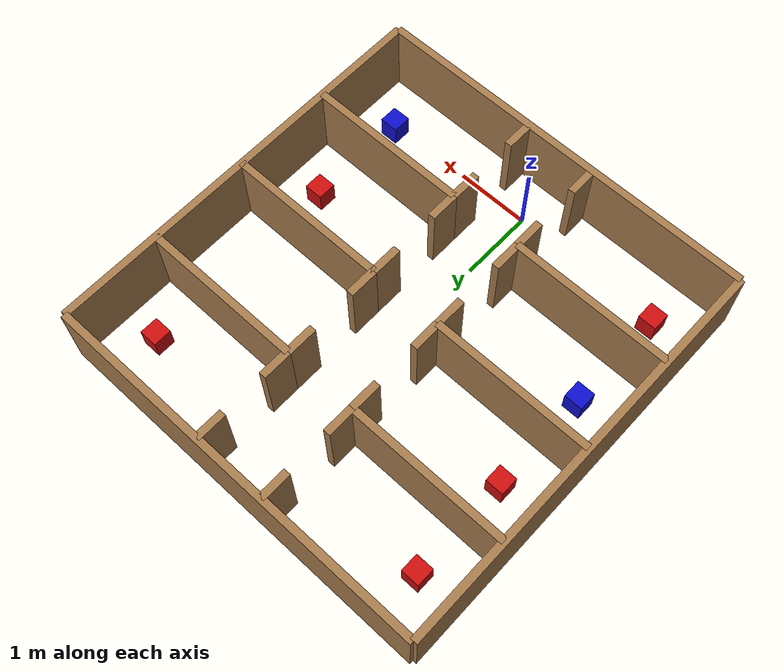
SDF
<sdf version="1.5">
 <world name="tars_borde_simetria">
  <physics type="ode">
   <max_step_size>0.001</max_step_size>
   <real_time_factor>1</real_time_factor>
   <real_time_update_rate>1000</real_time_update_rate>
   <gravity>0 0 -9.8</gravity>
  </physics>
  <plugin filename="gz-sim-physics-system" name="gz::sim::systems::Physics"/>
  <plugin filename="gz-sim-user-commands-system" name="gz::sim::systems::UserCommands"/>
  <plugin filename="gz-sim-scene-broadcaster-system" name="gz::sim::systems::SceneBroadcaster"/>
  <plugin filename="gz-sim-contact-system" name="gz::sim::systems::Contact"/>
  <plugin filename="gz-sim-sensors-system" name="gz::sim::systems::Sensors">
   <render_engine>ogre2</render_engine>
  </plugin>
  <plugin filename="gz-sim-imu-system" name="gz::sim::systems::Imu"/>
  <scene>
   <shadows>false</shadows>
   <ambient>0.2 0.2 0.2 1</ambient>
   <background>1 1 1 1</background>
   <grid>false</grid>
   <origin_visual>false</origin_visual>
  </scene>
  <include><uri>model://sun</uri></include>
  <light name="camera_spot_1_light" type="spot">
   <pose>-6 4 4 0 -1 -0.8</pose>
   <diffuse>0.5 0.5 0.5 1</diffuse>
   <specular>0.1 0.1 0.1 1</specular>
   <direction>0 0 -1</direction>
   <attenuation>
    <range>20</range>
    <constant>0.2</constant>
    <linear>0.01</linear>
    <quadratic>0.001</quadratic>
   </attenuation>
   <cast_shadows>0</cast_shadows>
   <spot><inner_angle>0.6</inner_angle><outer_angle>1</outer_angle><falloff>1</falloff></spot>
  </light>
  <light name="camera_spot_2_light" type="spot">
   <pose>5 -3 4 0 0.8 -0.6</pose>
   <diffuse>0.5 0.5 0.5 1</diffuse>
   <specular>0.1 0.1 0.1 1</specular>
   <direction>0 0 -1</direction>
   <attenuation>
    <range>20</range>
    <constant>0.3</constant>
    <linear>0.01</linear>
    <quadratic>0.001</quadratic>
   </attenuation>
   <cast_shadows>0</cast_shadows>
   <spot><inner_angle>0.6</inner_angle><outer_angle>1</outer_angle><falloff>1</falloff></spot>
  </light>
  <model name="paredes_borde">
   <static>true</static>
   <link name="pared_1">
    <pose>0.0 -0.6 0.5 0 0 0</pose>
    <collision name="collision"><geometry><box><size>5.4 0.1 1.0</size></box></geometry></collision>
    <visual name="visual">
     <geometry><box><size>5.4 0.1 1.0</size></box></geometry>
     <material><ambient>0.65 0.48 0.30 1</ambient><diffuse>0.65 0.48 0.30 1</diffuse></material>
    </visual>
   </link>
   <link name="pared_2">
    <pose>2.7 2.2 0.5 0 0 0</pose>
    <collision name="collision"><geometry><box><size>0.1 5.6 1.0</size></box></geometry></collision>
    <visual name="visual">
     <geometry><box><size>0.1 5.6 1.0</size></box></geometry>
     <material><ambient>0.65 0.48 0.30 1</ambient><diffuse>0.65 0.48 0.30 1</diffuse></material>
    </visual>
   </link>
   <link name="pared_3">
    <pose>0.0 5.0 0.5 0 0 0</pose>
    <collision name="collision"><geometry><box><size>5.4 0.1 1.0</size></box></geometry></collision>
    <visual name="visual">
     <geometry><box><size>5.4 0.1 1.0</size></box></geometry>
     <material><ambient>0.65 0.48 0.30 1</ambient><diffuse>0.65 0.48 0.30 1</diffuse></material>
    </visual>
   </link>
   <link name="pared_4">
    <pose>-2.7 2.2 0.5 0 0 0</pose>
    <collision name="collision"><geometry><box><size>0.1 5.6 1.0</size></box></geometry></collision>
    <visual name="visual">
     <geometry><box><size>0.1 5.6 1.0</size></box></geometry>
     <material><ambient>0.65 0.48 0.30 1</ambient><diffuse>0.65 0.48 0.30 1</diffuse></material>
    </visual>
   </link>
   <link name="pared_5">
    <pose>-0.5 -0.4 0.5 0 0 0</pose>
    <collision name="collision">
     <geometry><box><size>0.1 0.39999999999999997 1.0</size></box></geometry>
    </collision>
    <visual name="visual">
     <geometry><box><size>0.1 0.39999999999999997 1.0</size></box></geometry>
     <material><ambient>0.65 0.48 0.30 1</ambient><diffuse>0.65 0.48 0.30 1</diffuse></material>
    </visual>
   </link>
   <link name="pared_6">
    <pose>-0.5 0.6 0.5 0 0 0</pose>
    <collision name="collision">
     <geometry><box><size>0.1 0.39999999999999997 1.0</size></box></geometry>
    </collision>
    <visual name="visual">
     <geometry><box><size>0.1 0.39999999999999997 1.0</size></box></geometry>
     <material><ambient>0.65 0.48 0.30 1</ambient><diffuse>0.65 0.48 0.30 1</diffuse></material>
    </visual>
   </link>
   <link name="pared_7">
    <pose>-1.6 0.7999999999999999 0.5 0 0 0</pose>
    <collision name="collision"><geometry><box><size>2.2 0.1 1.0</size></box></geometry></collision>
    <visual name="visual">
     <geometry><box><size>2.2 0.1 1.0</size></box></geometry>
     <material><ambient>0.65 0.48 0.30 1</ambient><diffuse>0.65 0.48 0.30 1</diffuse></material>
    </visual>
   </link>
   <link name="pared_8">
    <pose>-0.5 1.0 0.5 0 0 0</pose>
    <collision name="collision"><geometry><box><size>0.1 0.4 1.0</size></box></geometry></collision>
    <visual name="visual">
     <geometry><box><size>0.1 0.4 1.0</size></box></geometry>
     <material><ambient>0.65 0.48 0.30 1</ambient><diffuse>0.65 0.48 0.30 1</diffuse></material>
    </visual>
   </link>
   <link name="pared_9">
    <pose>-0.5 2.0 0.5 0 0 0</pose>
    <collision name="collision">
     <geometry><box><size>0.1 0.3999999999999997 1.0</size></box></geometry>
    </collision>
    <visual name="visual">
     <geometry><box><size>0.1 0.3999999999999997 1.0</size></box></geometry>
     <material><ambient>0.65 0.48 0.30 1</ambient><diffuse>0.65 0.48 0.30 1</diffuse></material>
    </visual>
   </link>
   <link name="pared_10">
    <pose>-1.6 2.1999999999999997 0.5 0 0 0</pose>
    <collision name="collision"><geometry><box><size>2.2 0.1 1.0</size></box></geometry></collision>
    <visual name="visual">
     <geometry><box><size>2.2 0.1 1.0</size></box></geometry>
     <material><ambient>0.65 0.48 0.30 1</ambient><diffuse>0.65 0.48 0.30 1</diffuse></material>
    </visual>
   </link>
   <link name="pared_11">
    <pose>-0.5 2.3999999999999995 0.5 0 0 0</pose>
    <collision name="collision">
     <geometry><box><size>0.1 0.3999999999999999 1.0</size></box></geometry>
    </collision>
    <visual name="visual">
     <geometry><box><size>0.1 0.3999999999999999 1.0</size></box></geometry>
     <material><ambient>0.65 0.48 0.30 1</ambient><diffuse>0.65 0.48 0.30 1</diffuse></material>
    </visual>
   </link>
   <link name="pared_12">
    <pose>-0.5 3.3999999999999995 0.5 0 0 0</pose>
    <collision name="collision">
     <geometry><box><size>0.1 0.40000000000000036 1.0</size></box></geometry>
    </collision>
    <visual name="visual">
     <geometry><box><size>0.1 0.40000000000000036 1.0</size></box></geometry>
     <material><ambient>0.65 0.48 0.30 1</ambient><diffuse>0.65 0.48 0.30 1</diffuse></material>
    </visual>
   </link>
   <link name="pared_13">
    <pose>-1.6 3.5999999999999996 0.5 0 0 0</pose>
    <collision name="collision"><geometry><box><size>2.2 0.1 1.0</size></box></geometry></collision>
    <visual name="visual">
     <geometry><box><size>2.2 0.1 1.0</size></box></geometry>
     <material><ambient>0.65 0.48 0.30 1</ambient><diffuse>0.65 0.48 0.30 1</diffuse></material>
    </visual>
   </link>
   <link name="pared_14">
    <pose>-0.5 3.799999999999999 0.5 0 0 0</pose>
    <collision name="collision">
     <geometry><box><size>0.1 0.3999999999999999 1.0</size></box></geometry>
    </collision>
    <visual name="visual">
     <geometry><box><size>0.1 0.3999999999999999 1.0</size></box></geometry>
     <material><ambient>0.65 0.48 0.30 1</ambient><diffuse>0.65 0.48 0.30 1</diffuse></material>
    </visual>
   </link>
   <link name="pared_15">
    <pose>-0.5 4.799999999999999 0.5 0 0 0</pose>
    <collision name="collision">
     <geometry><box><size>0.1 0.40000000000000036 1.0</size></box></geometry>
    </collision>
    <visual name="visual">
     <geometry><box><size>0.1 0.40000000000000036 1.0</size></box></geometry>
     <material><ambient>0.65 0.48 0.30 1</ambient><diffuse>0.65 0.48 0.30 1</diffuse></material>
    </visual>
   </link>
   <link name="pared_16">
    <pose>0.5 -0.4 0.5 0 0 0</pose>
    <collision name="collision">
     <geometry><box><size>0.1 0.39999999999999997 1.0</size></box></geometry>
    </collision>
    <visual name="visual">
     <geometry><box><size>0.1 0.39999999999999997 1.0</size></box></geometry>
     <material><ambient>0.65 0.48 0.30 1</ambient><diffuse>0.65 0.48 0.30 1</diffuse></material>
    </visual>
   </link>
   <link name="pared_17">
    <pose>0.5 0.6 0.5 0 0 0</pose>
    <collision name="collision">
     <geometry><box><size>0.1 0.39999999999999997 1.0</size></box></geometry>
    </collision>
    <visual name="visual">
     <geometry><box><size>0.1 0.39999999999999997 1.0</size></box></geometry>
     <material><ambient>0.65 0.48 0.30 1</ambient><diffuse>0.65 0.48 0.30 1</diffuse></material>
    </visual>
   </link>
   <link name="pared_18">
    <pose>1.6 0.7999999999999999 0.5 0 0 0</pose>
    <collision name="collision"><geometry><box><size>2.2 0.1 1.0</size></box></geometry></collision>
    <visual name="visual">
     <geometry><box><size>2.2 0.1 1.0</size></box></geometry>
     <material><ambient>0.65 0.48 0.30 1</ambient><diffuse>0.65 0.48 0.30 1</diffuse></material>
    </visual>
   </link>
   <link name="pared_19">
    <pose>0.5 1.0 0.5 0 0 0</pose>
    <collision name="collision"><geometry><box><size>0.1 0.4 1.0</size></box></geometry></collision>
    <visual name="visual">
     <geometry><box><size>0.1 0.4 1.0</size></box></geometry>
     <material><ambient>0.65 0.48 0.30 1</ambient><diffuse>0.65 0.48 0.30 1</diffuse></material>
    </visual>
   </link>
   <link name="pared_20">
    <pose>0.5 2.0 0.5 0 0 0</pose>
    <collision name="collision">
     <geometry><box><size>0.1 0.3999999999999997 1.0</size></box></geometry>
    </collision>
    <visual name="visual">
     <geometry><box><size>0.1 0.3999999999999997 1.0</size></box></geometry>
     <material><ambient>0.65 0.48 0.30 1</ambient><diffuse>0.65 0.48 0.30 1</diffuse></material>
    </visual>
   </link>
   <link name="pared_21">
    <pose>1.6 2.1999999999999997 0.5 0 0 0</pose>
    <collision name="collision"><geometry><box><size>2.2 0.1 1.0</size></box></geometry></collision>
    <visual name="visual">
     <geometry><box><size>2.2 0.1 1.0</size></box></geometry>
     <material><ambient>0.65 0.48 0.30 1</ambient><diffuse>0.65 0.48 0.30 1</diffuse></material>
    </visual>
   </link>
   <link name="pared_22">
    <pose>0.5 2.3999999999999995 0.5 0 0 0</pose>
    <collision name="collision">
     <geometry><box><size>0.1 0.3999999999999999 1.0</size></box></geometry>
    </collision>
    <visual name="visual">
     <geometry><box><size>0.1 0.3999999999999999 1.0</size></box></geometry>
     <material><ambient>0.65 0.48 0.30 1</ambient><diffuse>0.65 0.48 0.30 1</diffuse></material>
    </visual>
   </link>
   <link name="pared_23">
    <pose>0.5 3.3999999999999995 0.5 0 0 0</pose>
    <collision name="collision">
     <geometry><box><size>0.1 0.40000000000000036 1.0</size></box></geometry>
    </collision>
    <visual name="visual">
     <geometry><box><size>0.1 0.40000000000000036 1.0</size></box></geometry>
     <material><ambient>0.65 0.48 0.30 1</ambient><diffuse>0.65 0.48 0.30 1</diffuse></material>
    </visual>
   </link>
   <link name="pared_24">
    <pose>1.6 3.5999999999999996 0.5 0 0 0</pose>
    <collision name="collision"><geometry><box><size>2.2 0.1 1.0</size></box></geometry></collision>
    <visual name="visual">
     <geometry><box><size>2.2 0.1 1.0</size></box></geometry>
     <material><ambient>0.65 0.48 0.30 1</ambient><diffuse>0.65 0.48 0.30 1</diffuse></material>
    </visual>
   </link>
   <link name="pared_25">
    <pose>0.5 3.799999999999999 0.5 0 0 0</pose>
    <collision name="collision">
     <geometry><box><size>0.1 0.3999999999999999 1.0</size></box></geometry>
    </collision>
    <visual name="visual">
     <geometry><box><size>0.1 0.3999999999999999 1.0</size></box></geometry>
     <material><ambient>0.65 0.48 0.30 1</ambient><diffuse>0.65 0.48 0.30 1</diffuse></material>
    </visual>
   </link>
   <link name="pared_26">
    <pose>0.5 4.799999999999999 0.5 0 0 0</pose>
    <collision name="collision">
     <geometry><box><size>0.1 0.40000000000000036 1.0</size></box></geometry>
    </collision>
    <visual name="visual">
     <geometry><box><size>0.1 0.40000000000000036 1.0</size></box></geometry>
     <material><ambient>0.65 0.48 0.30 1</ambient><diffuse>0.65 0.48 0.30 1</diffuse></material>
    </visual>
   </link>
  </model>
  <model name="marcas_color">
   <static>true</static>
   <link name="cuadrado_rojo_1">
    <pose>-2.12 0.1 .15 0 0 0</pose>
    <collision name="collision"><geometry><box><size>0.25 0.25 0.3</size></box></geometry></collision>
    <visual name="visual">
     <geometry><box><size>0.25 0.25 0.3</size></box></geometry>
     <material>
      <ambient>0.8 0.05 0.05 1</ambient>
      <diffuse>0.8 0.05 0.05 1</diffuse>
      <specular>0.1 0.1 0.1 1</specular>
     </material>
    </visual>
   </link>
   <link name="cuadrado_rojo_2">
    <pose>2.12 1.5 .15 0 0 0</pose>
    <collision name="collision"><geometry><box><size>0.25 0.25 0.3</size></box></geometry></collision>
    <visual name="visual">
     <geometry><box><size>0.25 0.25 0.3</size></box></geometry>
     <material>
      <ambient>0.8 0.05 0.05 1</ambient>
      <diffuse>0.8 0.05 0.05 1</diffuse>
      <specular>0.1 0.1 0.1 1</specular>
     </material>
    </visual>
   </link>
   <link name="cuadrado_rojo_3">
    <pose>-2.12 2.9 .15 0 0 0</pose>
    <collision name="collision"><geometry><box><size>0.25 0.25 0.3</size></box></geometry></collision>
    <visual name="visual">
     <geometry><box><size>0.25 0.25 0.3</size></box></geometry>
     <material>
      <ambient>0.8 0.05 0.05 1</ambient>
      <diffuse>0.8 0.05 0.05 1</diffuse>
      <specular>0.1 0.1 0.1 1</specular>
     </material>
    </visual>
   </link>
   <link name="cuadrado_rojo_4">
    <pose>2.12 4.3 .15 0 0 0</pose>
    <collision name="collision"><geometry><box><size>0.25 0.25 0.3</size></box></geometry></collision>
    <visual name="visual">
     <geometry><box><size>0.25 0.25 0.3</size></box></geometry>
     <material>
      <ambient>0.8 0.05 0.05 1</ambient>
      <diffuse>0.8 0.05 0.05 1</diffuse>
      <specular>0.1 0.1 0.1 1</specular>
     </material>
    </visual>
   </link>
   <link name="cuadrado_rojo_5">
    <pose>-2.12 4.3 .15 0 0 0</pose>
    <collision name="collision"><geometry><box><size>0.25 0.25 0.3</size></box></geometry></collision>
    <visual name="visual">
     <geometry><box><size>0.25 0.25 0.3</size></box></geometry>
     <material>
      <ambient>0.8 0.05 0.05 1</ambient>
      <diffuse>0.8 0.05 0.05 1</diffuse>
      <specular>0.1 0.1 0.1 1</specular>
     </material>
    </visual>
   </link>
   <link name="cuadrado_azul_1">
    <pose>2.12 0.1 .15 0 0 0</pose>
    <collision name="collision"><geometry><box><size>0.25 0.25 0.3</size></box></geometry></collision>
    <visual name="visual">
     <geometry><box><size>0.25 0.25 0.3</size></box></geometry>
     <material>
      <ambient>0.05 0.05 0.8 1</ambient>
      <diffuse>0.05 0.05 0.8 1</diffuse>
      <specular>0.1 0.1 0.1 1</specular>
     </material>
    </visual>
   </link>
   <link name="cuadrado_azul_2">
    <pose>-2.12 1.5 .15 0 0 0</pose>
    <collision name="collision"><geometry><box><size>0.25 0.25 0.3</size></box></geometry></collision>
    <visual name="visual">
     <geometry><box><size>0.25 0.25 0.3</size></box></geometry>
     <material>
      <ambient>0.05 0.05 0.8 1</ambient>
      <diffuse>0.05 0.05 0.8 1</diffuse>
      <specular>0.1 0.1 0.1 1</specular>
     </material>
    </visual>
   </link>
  </model>
 </world>
</sdf>
